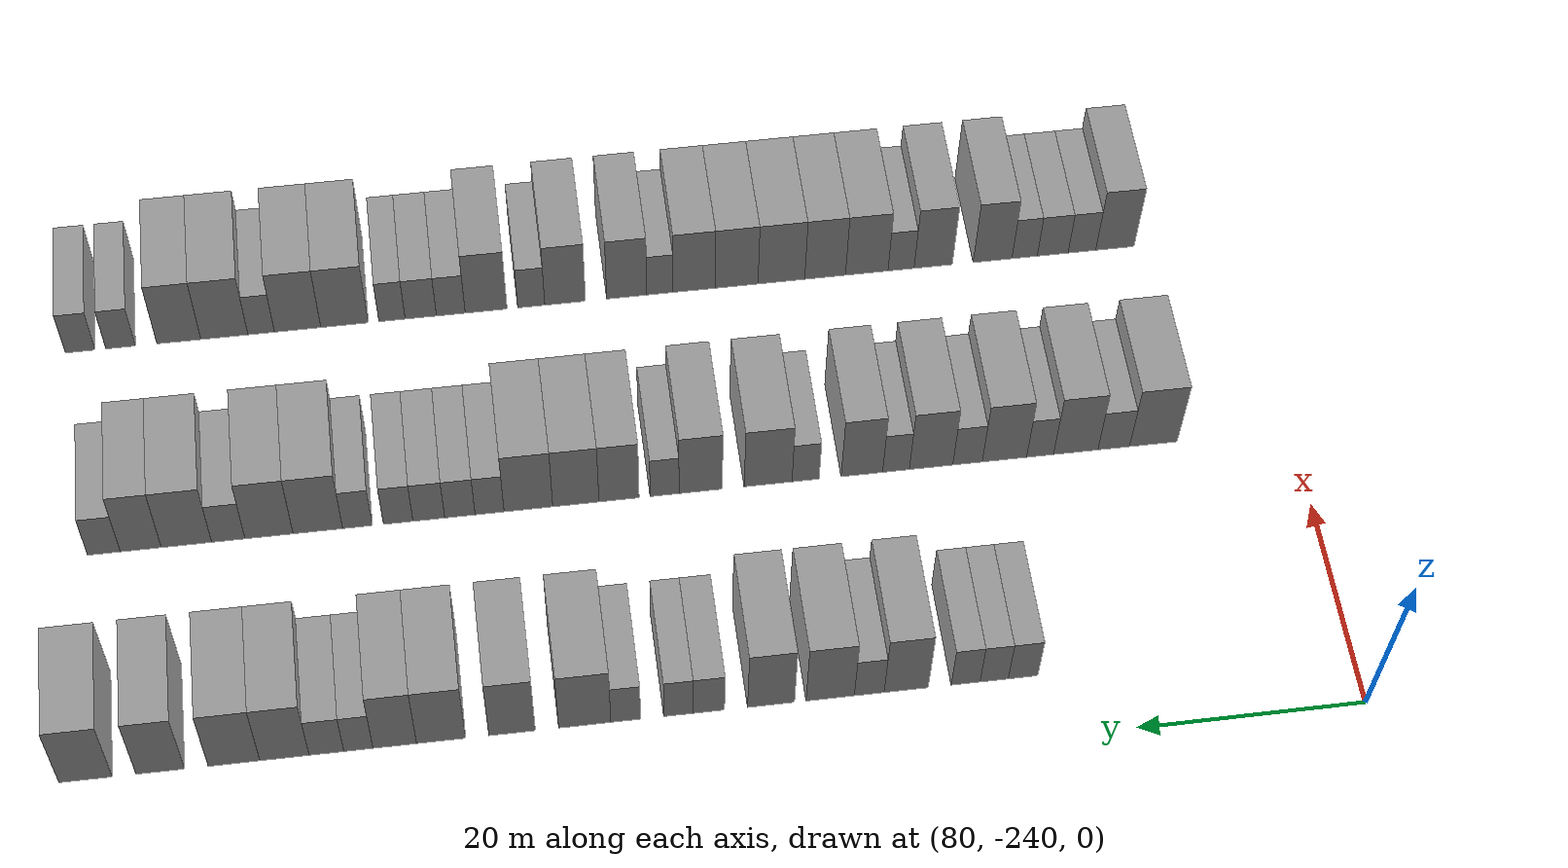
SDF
<sdf version="1.6">
 <world name="default">
  <model name="building_600">
   <static>1</static>
   <pose>91.0000 -211.1805 0 0.000000 0.000000 0.000000</pose>
   <link name="link">
    <pose>0 0 3.00 0 0 0</pose>
    <collision name="collision"><geometry><box><size>10.0000 2.5851 6.0000</size></box></geometry></collision>
    <visual name="visual">
     <cast_shadows>0</cast_shadows>
     <geometry><box><size>10.0000 2.5851 6.0000</size></box></geometry>
     <material>
      <script>
       <uri>model://grey_wall/materials/scripts</uri>
       <uri>model://grey_wall/materials/textures</uri>
       <name>vrc/grey_wall</name>
      </script>
     </material>
    </visual>
   </link>
  </model>
  <model name="building_601">
   <static>1</static>
   <pose>91.0000 -208.6540 0 0.000000 0.000000 0.000000</pose>
   <link name="link">
    <pose>0 0 3.00 0 0 0</pose>
    <collision name="collision"><geometry><box><size>10.0000 2.4679 6.0000</size></box></geometry></collision>
    <visual name="visual">
     <cast_shadows>0</cast_shadows>
     <geometry><box><size>10.0000 2.4679 6.0000</size></box></geometry>
     <material>
      <script>
       <uri>model://grey_wall/materials/scripts</uri>
       <uri>model://grey_wall/materials/textures</uri>
       <name>vrc/grey_wall</name>
      </script>
     </material>
    </visual>
   </link>
  </model>
  <model name="building_602">
   <static>1</static>
   <pose>91.0000 -206.1531 0 0.000000 0.000000 0.000000</pose>
   <link name="link">
    <pose>0 0 3.00 0 0 0</pose>
    <collision name="collision"><geometry><box><size>10.0000 2.5339 6.0000</size></box></geometry></collision>
    <visual name="visual">
     <cast_shadows>0</cast_shadows>
     <geometry><box><size>10.0000 2.5339 6.0000</size></box></geometry>
     <material>
      <script>
       <uri>model://grey_wall/materials/scripts</uri>
       <uri>model://grey_wall/materials/textures</uri>
       <name>vrc/grey_wall</name>
      </script>
     </material>
    </visual>
   </link>
  </model>
  <model name="building_603">
   <static>1</static>
   <pose>91.0000 -200.9616 0 0.000000 0.000000 0.000000</pose>
   <link name="link">
    <pose>0 0 4.50 0 0 0</pose>
    <collision name="collision"><geometry><box><size>10.0000 3.8490 9.0000</size></box></geometry></collision>
    <visual name="visual">
     <cast_shadows>0</cast_shadows>
     <geometry><box><size>10.0000 3.8490 9.0000</size></box></geometry>
     <material>
      <script>
       <uri>model://grey_wall/materials/scripts</uri>
       <uri>model://grey_wall/materials/textures</uri>
       <name>vrc/grey_wall</name>
      </script>
     </material>
    </visual>
   </link>
  </model>
  <model name="building_604">
   <static>1</static>
   <pose>91.0000 -197.7402 0 0.000000 0.000000 0.000000</pose>
   <link name="link">
    <pose>0 0 3.00 0 0 0</pose>
    <collision name="collision"><geometry><box><size>10.0000 2.5940 6.0000</size></box></geometry></collision>
    <visual name="visual">
     <cast_shadows>0</cast_shadows>
     <geometry><box><size>10.0000 2.5940 6.0000</size></box></geometry>
     <material>
      <script>
       <uri>model://grey_wall/materials/scripts</uri>
       <uri>model://grey_wall/materials/textures</uri>
       <name>vrc/grey_wall</name>
      </script>
     </material>
    </visual>
   </link>
  </model>
  <model name="building_605">
   <static>1</static>
   <pose>91.0000 -194.3454 0 0.000000 0.000000 0.000000</pose>
   <link name="link">
    <pose>0 0 4.50 0 0 0</pose>
    <collision name="collision"><geometry><box><size>10.0000 4.1956 9.0000</size></box></geometry></collision>
    <visual name="visual">
     <cast_shadows>0</cast_shadows>
     <geometry><box><size>10.0000 4.1956 9.0000</size></box></geometry>
     <material>
      <script>
       <uri>model://grey_wall/materials/scripts</uri>
       <uri>model://grey_wall/materials/textures</uri>
       <name>vrc/grey_wall</name>
      </script>
     </material>
    </visual>
   </link>
  </model>
  <model name="building_606">
   <static>1</static>
   <pose>91.0000 -189.2131 0 0.000000 0.000000 0.000000</pose>
   <link name="link">
    <pose>0 0 4.50 0 0 0</pose>
    <collision name="collision"><geometry><box><size>10.0000 4.0689 9.0000</size></box></geometry></collision>
    <visual name="visual">
     <cast_shadows>0</cast_shadows>
     <geometry><box><size>10.0000 4.0689 9.0000</size></box></geometry>
     <material>
      <script>
       <uri>model://grey_wall/materials/scripts</uri>
       <uri>model://grey_wall/materials/textures</uri>
       <name>vrc/grey_wall</name>
      </script>
     </material>
    </visual>
   </link>
  </model>
  <model name="building_607">
   <static>1</static>
   <pose>91.0000 -183.8229 0 0.000000 0.000000 0.000000</pose>
   <link name="link">
    <pose>0 0 3.00 0 0 0</pose>
    <collision name="collision"><geometry><box><size>10.0000 2.7115 6.0000</size></box></geometry></collision>
    <visual name="visual">
     <cast_shadows>0</cast_shadows>
     <geometry><box><size>10.0000 2.7115 6.0000</size></box></geometry>
     <material>
      <script>
       <uri>model://grey_wall/materials/scripts</uri>
       <uri>model://grey_wall/materials/textures</uri>
       <name>vrc/grey_wall</name>
      </script>
     </material>
    </visual>
   </link>
  </model>
  <model name="building_608">
   <static>1</static>
   <pose>91.0000 -181.2008 0 0.000000 0.000000 0.000000</pose>
   <link name="link">
    <pose>0 0 3.00 0 0 0</pose>
    <collision name="collision"><geometry><box><size>10.0000 2.5325 6.0000</size></box></geometry></collision>
    <visual name="visual">
     <cast_shadows>0</cast_shadows>
     <geometry><box><size>10.0000 2.5325 6.0000</size></box></geometry>
     <material>
      <script>
       <uri>model://grey_wall/materials/scripts</uri>
       <uri>model://grey_wall/materials/textures</uri>
       <name>vrc/grey_wall</name>
      </script>
     </material>
    </visual>
   </link>
  </model>
  <model name="building_609">
   <static>1</static>
   <pose>91.0000 -176.6529 0 0.000000 0.000000 0.000000</pose>
   <link name="link">
    <pose>0 0 3.00 0 0 0</pose>
    <collision name="collision"><geometry><box><size>10.0000 2.5633 6.0000</size></box></geometry></collision>
    <visual name="visual">
     <cast_shadows>0</cast_shadows>
     <geometry><box><size>10.0000 2.5633 6.0000</size></box></geometry>
     <material>
      <script>
       <uri>model://grey_wall/materials/scripts</uri>
       <uri>model://grey_wall/materials/textures</uri>
       <name>vrc/grey_wall</name>
      </script>
     </material>
    </visual>
   </link>
  </model>
  <model name="building_610">
   <static>1</static>
   <pose>91.0000 -173.1297 0 0.000000 0.000000 0.000000</pose>
   <link name="link">
    <pose>0 0 4.50 0 0 0</pose>
    <collision name="collision"><geometry><box><size>10.0000 4.4831 9.0000</size></box></geometry></collision>
    <visual name="visual">
     <cast_shadows>0</cast_shadows>
     <geometry><box><size>10.0000 4.4831 9.0000</size></box></geometry>
     <material>
      <script>
       <uri>model://grey_wall/materials/scripts</uri>
       <uri>model://grey_wall/materials/textures</uri>
       <name>vrc/grey_wall</name>
      </script>
     </material>
    </visual>
   </link>
  </model>
  <model name="building_611">
   <static>1</static>
   <pose>91.0000 -166.9022 0 0.000000 0.000000 0.000000</pose>
   <link name="link">
    <pose>0 0 4.50 0 0 0</pose>
    <collision name="collision"><geometry><box><size>10.0000 3.9720 9.0000</size></box></geometry></collision>
    <visual name="visual">
     <cast_shadows>0</cast_shadows>
     <geometry><box><size>10.0000 3.9720 9.0000</size></box></geometry>
     <material>
      <script>
       <uri>model://grey_wall/materials/scripts</uri>
       <uri>model://grey_wall/materials/textures</uri>
       <name>vrc/grey_wall</name>
      </script>
     </material>
    </visual>
   </link>
  </model>
  <model name="building_612">
   <static>1</static>
   <pose>91.0000 -160.8242 0 0.000000 0.000000 0.000000</pose>
   <link name="link">
    <pose>0 0 4.50 0 0 0</pose>
    <collision name="collision"><geometry><box><size>10.0000 4.1842 9.0000</size></box></geometry></collision>
    <visual name="visual">
     <cast_shadows>0</cast_shadows>
     <geometry><box><size>10.0000 4.1842 9.0000</size></box></geometry>
     <material>
      <script>
       <uri>model://grey_wall/materials/scripts</uri>
       <uri>model://grey_wall/materials/textures</uri>
       <name>vrc/grey_wall</name>
      </script>
     </material>
    </visual>
   </link>
  </model>
  <model name="building_613">
   <static>1</static>
   <pose>91.0000 -156.8763 0 0.000000 0.000000 0.000000</pose>
   <link name="link">
    <pose>0 0 4.50 0 0 0</pose>
    <collision name="collision"><geometry><box><size>10.0000 3.7114 9.0000</size></box></geometry></collision>
    <visual name="visual">
     <cast_shadows>0</cast_shadows>
     <geometry><box><size>10.0000 3.7114 9.0000</size></box></geometry>
     <material>
      <script>
       <uri>model://grey_wall/materials/scripts</uri>
       <uri>model://grey_wall/materials/textures</uri>
       <name>vrc/grey_wall</name>
      </script>
     </material>
    </visual>
   </link>
  </model>
  <model name="building_614">
   <static>1</static>
   <pose>91.0000 -153.7820 0 0.000000 0.000000 0.000000</pose>
   <link name="link">
    <pose>0 0 3.00 0 0 0</pose>
    <collision name="collision"><geometry><box><size>10.0000 2.4773 6.0000</size></box></geometry></collision>
    <visual name="visual">
     <cast_shadows>0</cast_shadows>
     <geometry><box><size>10.0000 2.4773 6.0000</size></box></geometry>
     <material>
      <script>
       <uri>model://grey_wall/materials/scripts</uri>
       <uri>model://grey_wall/materials/textures</uri>
       <name>vrc/grey_wall</name>
      </script>
     </material>
    </visual>
   </link>
  </model>
  <model name="building_615">
   <static>1</static>
   <pose>91.0000 -151.0632 0 0.000000 0.000000 0.000000</pose>
   <link name="link">
    <pose>0 0 3.00 0 0 0</pose>
    <collision name="collision"><geometry><box><size>10.0000 2.9602 6.0000</size></box></geometry></collision>
    <visual name="visual">
     <cast_shadows>0</cast_shadows>
     <geometry><box><size>10.0000 2.9602 6.0000</size></box></geometry>
     <material>
      <script>
       <uri>model://grey_wall/materials/scripts</uri>
       <uri>model://grey_wall/materials/textures</uri>
       <name>vrc/grey_wall</name>
      </script>
     </material>
    </visual>
   </link>
  </model>
  <model name="building_616">
   <static>1</static>
   <pose>91.0000 -147.4968 0 0.000000 0.000000 0.000000</pose>
   <link name="link">
    <pose>0 0 4.50 0 0 0</pose>
    <collision name="collision"><geometry><box><size>10.0000 4.1727 9.0000</size></box></geometry></collision>
    <visual name="visual">
     <cast_shadows>0</cast_shadows>
     <geometry><box><size>10.0000 4.1727 9.0000</size></box></geometry>
     <material>
      <script>
       <uri>model://grey_wall/materials/scripts</uri>
       <uri>model://grey_wall/materials/textures</uri>
       <name>vrc/grey_wall</name>
      </script>
     </material>
    </visual>
   </link>
  </model>
  <model name="building_617">
   <static>1</static>
   <pose>91.0000 -143.2257 0 0.000000 0.000000 0.000000</pose>
   <link name="link">
    <pose>0 0 4.50 0 0 0</pose>
    <collision name="collision"><geometry><box><size>10.0000 4.3695 9.0000</size></box></geometry></collision>
    <visual name="visual">
     <cast_shadows>0</cast_shadows>
     <geometry><box><size>10.0000 4.3695 9.0000</size></box></geometry>
     <material>
      <script>
       <uri>model://grey_wall/materials/scripts</uri>
       <uri>model://grey_wall/materials/textures</uri>
       <name>vrc/grey_wall</name>
      </script>
     </material>
    </visual>
   </link>
  </model>
  <model name="building_618">
   <static>1</static>
   <pose>91.0000 -136.9968 0 0.000000 0.000000 0.000000</pose>
   <link name="link">
    <pose>0 0 4.50 0 0 0</pose>
    <collision name="collision"><geometry><box><size>10.0000 4.0883 9.0000</size></box></geometry></collision>
    <visual name="visual">
     <cast_shadows>0</cast_shadows>
     <geometry><box><size>10.0000 4.0883 9.0000</size></box></geometry>
     <material>
      <script>
       <uri>model://grey_wall/materials/scripts</uri>
       <uri>model://grey_wall/materials/textures</uri>
       <name>vrc/grey_wall</name>
      </script>
     </material>
    </visual>
   </link>
  </model>
  <model name="building_619">
   <static>1</static>
   <pose>91.0000 -130.7131 0 0.000000 0.000000 0.000000</pose>
   <link name="link">
    <pose>0 0 4.50 0 0 0</pose>
    <collision name="collision"><geometry><box><size>10.0000 4.4792 9.0000</size></box></geometry></collision>
    <visual name="visual">
     <cast_shadows>0</cast_shadows>
     <geometry><box><size>10.0000 4.4792 9.0000</size></box></geometry>
     <material>
      <script>
       <uri>model://grey_wall/materials/scripts</uri>
       <uri>model://grey_wall/materials/textures</uri>
       <name>vrc/grey_wall</name>
      </script>
     </material>
    </visual>
   </link>
  </model>
  <model name="building_780">
   <static>1</static>
   <pose>113.0000 -227.3114 0 0.000000 0.000000 0.000000</pose>
   <link name="link">
    <pose>0 0 4.50 0 0 0</pose>
    <collision name="collision"><geometry><box><size>10.0000 4.4125 9.0000</size></box></geometry></collision>
    <visual name="visual">
     <cast_shadows>0</cast_shadows>
     <geometry><box><size>10.0000 4.4125 9.0000</size></box></geometry>
     <material>
      <script>
       <uri>model://grey_wall/materials/scripts</uri>
       <uri>model://grey_wall/materials/textures</uri>
       <name>vrc/grey_wall</name>
      </script>
     </material>
    </visual>
   </link>
  </model>
  <model name="building_781">
   <static>1</static>
   <pose>113.0000 -223.6478 0 0.000000 0.000000 0.000000</pose>
   <link name="link">
    <pose>0 0 3.00 0 0 0</pose>
    <collision name="collision"><geometry><box><size>10.0000 2.9148 6.0000</size></box></geometry></collision>
    <visual name="visual">
     <cast_shadows>0</cast_shadows>
     <geometry><box><size>10.0000 2.9148 6.0000</size></box></geometry>
     <material>
      <script>
       <uri>model://grey_wall/materials/scripts</uri>
       <uri>model://grey_wall/materials/textures</uri>
       <name>vrc/grey_wall</name>
      </script>
     </material>
    </visual>
   </link>
  </model>
  <model name="building_782">
   <static>1</static>
   <pose>113.0000 -220.1425 0 0.000000 0.000000 0.000000</pose>
   <link name="link">
    <pose>0 0 4.50 0 0 0</pose>
    <collision name="collision"><geometry><box><size>10.0000 4.0959 9.0000</size></box></geometry></collision>
    <visual name="visual">
     <cast_shadows>0</cast_shadows>
     <geometry><box><size>10.0000 4.0959 9.0000</size></box></geometry>
     <material>
      <script>
       <uri>model://grey_wall/materials/scripts</uri>
       <uri>model://grey_wall/materials/textures</uri>
       <name>vrc/grey_wall</name>
      </script>
     </material>
    </visual>
   </link>
  </model>
  <model name="building_783">
   <static>1</static>
   <pose>113.0000 -216.8578 0 0.000000 0.000000 0.000000</pose>
   <link name="link">
    <pose>0 0 3.00 0 0 0</pose>
    <collision name="collision"><geometry><box><size>10.0000 2.4735 6.0000</size></box></geometry></collision>
    <visual name="visual">
     <cast_shadows>0</cast_shadows>
     <geometry><box><size>10.0000 2.4735 6.0000</size></box></geometry>
     <material>
      <script>
       <uri>model://grey_wall/materials/scripts</uri>
       <uri>model://grey_wall/materials/textures</uri>
       <name>vrc/grey_wall</name>
      </script>
     </material>
    </visual>
   </link>
  </model>
  <model name="building_784">
   <static>1</static>
   <pose>113.0000 -213.5853 0 0.000000 0.000000 0.000000</pose>
   <link name="link">
    <pose>0 0 4.50 0 0 0</pose>
    <collision name="collision"><geometry><box><size>10.0000 4.0714 9.0000</size></box></geometry></collision>
    <visual name="visual">
     <cast_shadows>0</cast_shadows>
     <geometry><box><size>10.0000 4.0714 9.0000</size></box></geometry>
     <material>
      <script>
       <uri>model://grey_wall/materials/scripts</uri>
       <uri>model://grey_wall/materials/textures</uri>
       <name>vrc/grey_wall</name>
      </script>
     </material>
    </visual>
   </link>
  </model>
  <model name="building_785">
   <static>1</static>
   <pose>113.0000 -210.1982 0 0.000000 0.000000 0.000000</pose>
   <link name="link">
    <pose>0 0 3.00 0 0 0</pose>
    <collision name="collision"><geometry><box><size>10.0000 2.7028 6.0000</size></box></geometry></collision>
    <visual name="visual">
     <cast_shadows>0</cast_shadows>
     <geometry><box><size>10.0000 2.7028 6.0000</size></box></geometry>
     <material>
      <script>
       <uri>model://grey_wall/materials/scripts</uri>
       <uri>model://grey_wall/materials/textures</uri>
       <name>vrc/grey_wall</name>
      </script>
     </material>
    </visual>
   </link>
  </model>
  <model name="building_786">
   <static>1</static>
   <pose>113.0000 -206.8570 0 0.000000 0.000000 0.000000</pose>
   <link name="link">
    <pose>0 0 4.50 0 0 0</pose>
    <collision name="collision"><geometry><box><size>10.0000 3.9797 9.0000</size></box></geometry></collision>
    <visual name="visual">
     <cast_shadows>0</cast_shadows>
     <geometry><box><size>10.0000 3.9797 9.0000</size></box></geometry>
     <material>
      <script>
       <uri>model://grey_wall/materials/scripts</uri>
       <uri>model://grey_wall/materials/textures</uri>
       <name>vrc/grey_wall</name>
      </script>
     </material>
    </visual>
   </link>
  </model>
  <model name="building_787">
   <static>1</static>
   <pose>113.0000 -203.6434 0 0.000000 0.000000 0.000000</pose>
   <link name="link">
    <pose>0 0 3.00 0 0 0</pose>
    <collision name="collision"><geometry><box><size>10.0000 2.4476 6.0000</size></box></geometry></collision>
    <visual name="visual">
     <cast_shadows>0</cast_shadows>
     <geometry><box><size>10.0000 2.4476 6.0000</size></box></geometry>
     <material>
      <script>
       <uri>model://grey_wall/materials/scripts</uri>
       <uri>model://grey_wall/materials/textures</uri>
       <name>vrc/grey_wall</name>
      </script>
     </material>
    </visual>
   </link>
  </model>
  <model name="building_788">
   <static>1</static>
   <pose>113.0000 -200.5249 0 0.000000 0.000000 0.000000</pose>
   <link name="link">
    <pose>0 0 4.50 0 0 0</pose>
    <collision name="collision"><geometry><box><size>10.0000 3.7893 9.0000</size></box></geometry></collision>
    <visual name="visual">
     <cast_shadows>0</cast_shadows>
     <geometry><box><size>10.0000 3.7893 9.0000</size></box></geometry>
     <material>
      <script>
       <uri>model://grey_wall/materials/scripts</uri>
       <uri>model://grey_wall/materials/textures</uri>
       <name>vrc/grey_wall</name>
      </script>
     </material>
    </visual>
   </link>
  </model>
  <model name="building_789">
   <static>1</static>
   <pose>113.0000 -195.3949 0 0.000000 0.000000 0.000000</pose>
   <link name="link">
    <pose>0 0 3.00 0 0 0</pose>
    <collision name="collision"><geometry><box><size>10.0000 2.4707 6.0000</size></box></geometry></collision>
    <visual name="visual">
     <cast_shadows>0</cast_shadows>
     <geometry><box><size>10.0000 2.4707 6.0000</size></box></geometry>
     <material>
      <script>
       <uri>model://grey_wall/materials/scripts</uri>
       <uri>model://grey_wall/materials/textures</uri>
       <name>vrc/grey_wall</name>
      </script>
     </material>
    </visual>
   </link>
  </model>
  <model name="building_790">
   <static>1</static>
   <pose>113.0000 -191.9855 0 0.000000 0.000000 0.000000</pose>
   <link name="link">
    <pose>0 0 4.50 0 0 0</pose>
    <collision name="collision"><geometry><box><size>10.0000 4.3482 9.0000</size></box></geometry></collision>
    <visual name="visual">
     <cast_shadows>0</cast_shadows>
     <geometry><box><size>10.0000 4.3482 9.0000</size></box></geometry>
     <material>
      <script>
       <uri>model://grey_wall/materials/scripts</uri>
       <uri>model://grey_wall/materials/textures</uri>
       <name>vrc/grey_wall</name>
      </script>
     </material>
    </visual>
   </link>
  </model>
  <model name="building_791">
   <static>1</static>
   <pose>113.0000 -185.8587 0 0.000000 0.000000 0.000000</pose>
   <link name="link">
    <pose>0 0 4.50 0 0 0</pose>
    <collision name="collision"><geometry><box><size>10.0000 3.9053 9.0000</size></box></geometry></collision>
    <visual name="visual">
     <cast_shadows>0</cast_shadows>
     <geometry><box><size>10.0000 3.9053 9.0000</size></box></geometry>
     <material>
      <script>
       <uri>model://grey_wall/materials/scripts</uri>
       <uri>model://grey_wall/materials/textures</uri>
       <name>vrc/grey_wall</name>
      </script>
     </material>
    </visual>
   </link>
  </model>
  <model name="building_792">
   <static>1</static>
   <pose>113.0000 -182.6021 0 0.000000 0.000000 0.000000</pose>
   <link name="link">
    <pose>0 0 3.00 0 0 0</pose>
    <collision name="collision"><geometry><box><size>10.0000 2.6078 6.0000</size></box></geometry></collision>
    <visual name="visual">
     <cast_shadows>0</cast_shadows>
     <geometry><box><size>10.0000 2.6078 6.0000</size></box></geometry>
     <material>
      <script>
       <uri>model://grey_wall/materials/scripts</uri>
       <uri>model://grey_wall/materials/textures</uri>
       <name>vrc/grey_wall</name>
      </script>
     </material>
    </visual>
   </link>
  </model>
  <model name="building_793">
   <static>1</static>
   <pose>113.0000 -178.4873 0 0.000000 0.000000 0.000000</pose>
   <link name="link">
    <pose>0 0 4.50 0 0 0</pose>
    <collision name="collision"><geometry><box><size>10.0000 3.6219 9.0000</size></box></geometry></collision>
    <visual name="visual">
     <cast_shadows>0</cast_shadows>
     <geometry><box><size>10.0000 3.6219 9.0000</size></box></geometry>
     <material>
      <script>
       <uri>model://grey_wall/materials/scripts</uri>
       <uri>model://grey_wall/materials/textures</uri>
       <name>vrc/grey_wall</name>
      </script>
     </material>
    </visual>
   </link>
  </model>
  <model name="building_794">
   <static>1</static>
   <pose>113.0000 -174.5948 0 0.000000 0.000000 0.000000</pose>
   <link name="link">
    <pose>0 0 4.50 0 0 0</pose>
    <collision name="collision"><geometry><box><size>10.0000 4.1630 9.0000</size></box></geometry></collision>
    <visual name="visual">
     <cast_shadows>0</cast_shadows>
     <geometry><box><size>10.0000 4.1630 9.0000</size></box></geometry>
     <material>
      <script>
       <uri>model://grey_wall/materials/scripts</uri>
       <uri>model://grey_wall/materials/textures</uri>
       <name>vrc/grey_wall</name>
      </script>
     </material>
    </visual>
   </link>
  </model>
  <model name="building_795">
   <static>1</static>
   <pose>113.0000 -170.3277 0 0.000000 0.000000 0.000000</pose>
   <link name="link">
    <pose>0 0 4.50 0 0 0</pose>
    <collision name="collision"><geometry><box><size>10.0000 4.3713 9.0000</size></box></geometry></collision>
    <visual name="visual">
     <cast_shadows>0</cast_shadows>
     <geometry><box><size>10.0000 4.3713 9.0000</size></box></geometry>
     <material>
      <script>
       <uri>model://grey_wall/materials/scripts</uri>
       <uri>model://grey_wall/materials/textures</uri>
       <name>vrc/grey_wall</name>
      </script>
     </material>
    </visual>
   </link>
  </model>
  <model name="building_796">
   <static>1</static>
   <pose>113.0000 -166.8420 0 0.000000 0.000000 0.000000</pose>
   <link name="link">
    <pose>0 0 3.00 0 0 0</pose>
    <collision name="collision"><geometry><box><size>10.0000 2.6000 6.0000</size></box></geometry></collision>
    <visual name="visual">
     <cast_shadows>0</cast_shadows>
     <geometry><box><size>10.0000 2.6000 6.0000</size></box></geometry>
     <material>
      <script>
       <uri>model://grey_wall/materials/scripts</uri>
       <uri>model://grey_wall/materials/textures</uri>
       <name>vrc/grey_wall</name>
      </script>
     </material>
    </visual>
   </link>
  </model>
  <model name="building_797">
   <static>1</static>
   <pose>113.0000 -164.1796 0 0.000000 0.000000 0.000000</pose>
   <link name="link">
    <pose>0 0 3.00 0 0 0</pose>
    <collision name="collision"><geometry><box><size>10.0000 2.7249 6.0000</size></box></geometry></collision>
    <visual name="visual">
     <cast_shadows>0</cast_shadows>
     <geometry><box><size>10.0000 2.7249 6.0000</size></box></geometry>
     <material>
      <script>
       <uri>model://grey_wall/materials/scripts</uri>
       <uri>model://grey_wall/materials/textures</uri>
       <name>vrc/grey_wall</name>
      </script>
     </material>
    </visual>
   </link>
  </model>
  <model name="building_798">
   <static>1</static>
   <pose>113.0000 -161.3976 0 0.000000 0.000000 0.000000</pose>
   <link name="link">
    <pose>0 0 3.00 0 0 0</pose>
    <collision name="collision"><geometry><box><size>10.0000 2.8390 6.0000</size></box></geometry></collision>
    <visual name="visual">
     <cast_shadows>0</cast_shadows>
     <geometry><box><size>10.0000 2.8390 6.0000</size></box></geometry>
     <material>
      <script>
       <uri>model://grey_wall/materials/scripts</uri>
       <uri>model://grey_wall/materials/textures</uri>
       <name>vrc/grey_wall</name>
      </script>
     </material>
    </visual>
   </link>
  </model>
  <model name="building_799">
   <static>1</static>
   <pose>113.0000 -158.6594 0 0.000000 0.000000 0.000000</pose>
   <link name="link">
    <pose>0 0 3.00 0 0 0</pose>
    <collision name="collision"><geometry><box><size>10.0000 2.6374 6.0000</size></box></geometry></collision>
    <visual name="visual">
     <cast_shadows>0</cast_shadows>
     <geometry><box><size>10.0000 2.6374 6.0000</size></box></geometry>
     <material>
      <script>
       <uri>model://grey_wall/materials/scripts</uri>
       <uri>model://grey_wall/materials/textures</uri>
       <name>vrc/grey_wall</name>
      </script>
     </material>
    </visual>
   </link>
  </model>
  <model name="building_800">
   <static>1</static>
   <pose>113.0000 -155.0207 0 0.000000 0.000000 0.000000</pose>
   <link name="link">
    <pose>0 0 3.00 0 0 0</pose>
    <collision name="collision"><geometry><box><size>10.0000 2.6400 6.0000</size></box></geometry></collision>
    <visual name="visual">
     <cast_shadows>0</cast_shadows>
     <geometry><box><size>10.0000 2.6400 6.0000</size></box></geometry>
     <material>
      <script>
       <uri>model://grey_wall/materials/scripts</uri>
       <uri>model://grey_wall/materials/textures</uri>
       <name>vrc/grey_wall</name>
      </script>
     </material>
    </visual>
   </link>
  </model>
  <model name="building_801">
   <static>1</static>
   <pose>113.0000 -151.4915 0 0.000000 0.000000 0.000000</pose>
   <link name="link">
    <pose>0 0 4.50 0 0 0</pose>
    <collision name="collision"><geometry><box><size>10.0000 4.4185 9.0000</size></box></geometry></collision>
    <visual name="visual">
     <cast_shadows>0</cast_shadows>
     <geometry><box><size>10.0000 4.4185 9.0000</size></box></geometry>
     <material>
      <script>
       <uri>model://grey_wall/materials/scripts</uri>
       <uri>model://grey_wall/materials/textures</uri>
       <name>vrc/grey_wall</name>
      </script>
     </material>
    </visual>
   </link>
  </model>
  <model name="building_802">
   <static>1</static>
   <pose>113.0000 -147.1456 0 0.000000 0.000000 0.000000</pose>
   <link name="link">
    <pose>0 0 4.50 0 0 0</pose>
    <collision name="collision"><geometry><box><size>10.0000 4.2732 9.0000</size></box></geometry></collision>
    <visual name="visual">
     <cast_shadows>0</cast_shadows>
     <geometry><box><size>10.0000 4.2732 9.0000</size></box></geometry>
     <material>
      <script>
       <uri>model://grey_wall/materials/scripts</uri>
       <uri>model://grey_wall/materials/textures</uri>
       <name>vrc/grey_wall</name>
      </script>
     </material>
    </visual>
   </link>
  </model>
  <model name="building_803">
   <static>1</static>
   <pose>113.0000 -143.5298 0 0.000000 0.000000 0.000000</pose>
   <link name="link">
    <pose>0 0 3.00 0 0 0</pose>
    <collision name="collision"><geometry><box><size>10.0000 2.9585 6.0000</size></box></geometry></collision>
    <visual name="visual">
     <cast_shadows>0</cast_shadows>
     <geometry><box><size>10.0000 2.9585 6.0000</size></box></geometry>
     <material>
      <script>
       <uri>model://grey_wall/materials/scripts</uri>
       <uri>model://grey_wall/materials/textures</uri>
       <name>vrc/grey_wall</name>
      </script>
     </material>
    </visual>
   </link>
  </model>
  <model name="building_804">
   <static>1</static>
   <pose>113.0000 -139.8216 0 0.000000 0.000000 0.000000</pose>
   <link name="link">
    <pose>0 0 4.50 0 0 0</pose>
    <collision name="collision"><geometry><box><size>10.0000 4.4579 9.0000</size></box></geometry></collision>
    <visual name="visual">
     <cast_shadows>0</cast_shadows>
     <geometry><box><size>10.0000 4.4579 9.0000</size></box></geometry>
     <material>
      <script>
       <uri>model://grey_wall/materials/scripts</uri>
       <uri>model://grey_wall/materials/textures</uri>
       <name>vrc/grey_wall</name>
      </script>
     </material>
    </visual>
   </link>
  </model>
  <model name="building_805">
   <static>1</static>
   <pose>113.0000 -135.7829 0 0.000000 0.000000 0.000000</pose>
   <link name="link">
    <pose>0 0 4.50 0 0 0</pose>
    <collision name="collision"><geometry><box><size>10.0000 3.6194 9.0000</size></box></geometry></collision>
    <visual name="visual">
     <cast_shadows>0</cast_shadows>
     <geometry><box><size>10.0000 3.6194 9.0000</size></box></geometry>
     <material>
      <script>
       <uri>model://grey_wall/materials/scripts</uri>
       <uri>model://grey_wall/materials/textures</uri>
       <name>vrc/grey_wall</name>
      </script>
     </material>
    </visual>
   </link>
  </model>
  <model name="building_806">
   <static>1</static>
   <pose>113.0000 -132.5308 0 0.000000 0.000000 0.000000</pose>
   <link name="link">
    <pose>0 0 3.00 0 0 0</pose>
    <collision name="collision"><geometry><box><size>10.0000 2.8849 6.0000</size></box></geometry></collision>
    <visual name="visual">
     <cast_shadows>0</cast_shadows>
     <geometry><box><size>10.0000 2.8849 6.0000</size></box></geometry>
     <material>
      <script>
       <uri>model://grey_wall/materials/scripts</uri>
       <uri>model://grey_wall/materials/textures</uri>
       <name>vrc/grey_wall</name>
      </script>
     </material>
    </visual>
   </link>
  </model>
  <model name="building_969">
   <static>1</static>
   <pose>135.0000 -228.2576 0 0.000000 0.000000 0.000000</pose>
   <link name="link">
    <pose>0 0 4.50 0 0 0</pose>
    <collision name="collision"><geometry><box><size>10.0000 3.7115 9.0000</size></box></geometry></collision>
    <visual name="visual">
     <cast_shadows>0</cast_shadows>
     <geometry><box><size>10.0000 3.7115 9.0000</size></box></geometry>
     <material>
      <script>
       <uri>model://grey_wall/materials/scripts</uri>
       <uri>model://grey_wall/materials/textures</uri>
       <name>vrc/grey_wall</name>
      </script>
     </material>
    </visual>
   </link>
  </model>
  <model name="building_970">
   <static>1</static>
   <pose>135.0000 -225.0713 0 0.000000 0.000000 0.000000</pose>
   <link name="link">
    <pose>0 0 3.00 0 0 0</pose>
    <collision name="collision"><geometry><box><size>10.0000 2.6611 6.0000</size></box></geometry></collision>
    <visual name="visual">
     <cast_shadows>0</cast_shadows>
     <geometry><box><size>10.0000 2.6611 6.0000</size></box></geometry>
     <material>
      <script>
       <uri>model://grey_wall/materials/scripts</uri>
       <uri>model://grey_wall/materials/textures</uri>
       <name>vrc/grey_wall</name>
      </script>
     </material>
    </visual>
   </link>
  </model>
  <model name="building_971">
   <static>1</static>
   <pose>135.0000 -222.2592 0 0.000000 0.000000 0.000000</pose>
   <link name="link">
    <pose>0 0 3.00 0 0 0</pose>
    <collision name="collision"><geometry><box><size>10.0000 2.9632 6.0000</size></box></geometry></collision>
    <visual name="visual">
     <cast_shadows>0</cast_shadows>
     <geometry><box><size>10.0000 2.9632 6.0000</size></box></geometry>
     <material>
      <script>
       <uri>model://grey_wall/materials/scripts</uri>
       <uri>model://grey_wall/materials/textures</uri>
       <name>vrc/grey_wall</name>
      </script>
     </material>
    </visual>
   </link>
  </model>
  <model name="building_972">
   <static>1</static>
   <pose>135.0000 -219.5555 0 0.000000 0.000000 0.000000</pose>
   <link name="link">
    <pose>0 0 3.00 0 0 0</pose>
    <collision name="collision"><geometry><box><size>10.0000 2.4442 6.0000</size></box></geometry></collision>
    <visual name="visual">
     <cast_shadows>0</cast_shadows>
     <geometry><box><size>10.0000 2.4442 6.0000</size></box></geometry>
     <material>
      <script>
       <uri>model://grey_wall/materials/scripts</uri>
       <uri>model://grey_wall/materials/textures</uri>
       <name>vrc/grey_wall</name>
      </script>
     </material>
    </visual>
   </link>
  </model>
  <model name="building_973">
   <static>1</static>
   <pose>135.0000 -216.4706 0 0.000000 0.000000 0.000000</pose>
   <link name="link">
    <pose>0 0 4.50 0 0 0</pose>
    <collision name="collision"><geometry><box><size>10.0000 3.7255 9.0000</size></box></geometry></collision>
    <visual name="visual">
     <cast_shadows>0</cast_shadows>
     <geometry><box><size>10.0000 3.7255 9.0000</size></box></geometry>
     <material>
      <script>
       <uri>model://grey_wall/materials/scripts</uri>
       <uri>model://grey_wall/materials/textures</uri>
       <name>vrc/grey_wall</name>
      </script>
     </material>
    </visual>
   </link>
  </model>
  <model name="building_974">
   <static>1</static>
   <pose>135.0000 -210.7775 0 0.000000 0.000000 0.000000</pose>
   <link name="link">
    <pose>0 0 4.50 0 0 0</pose>
    <collision name="collision"><geometry><box><size>10.0000 3.6606 9.0000</size></box></geometry></collision>
    <visual name="visual">
     <cast_shadows>0</cast_shadows>
     <geometry><box><size>10.0000 3.6606 9.0000</size></box></geometry>
     <material>
      <script>
       <uri>model://grey_wall/materials/scripts</uri>
       <uri>model://grey_wall/materials/textures</uri>
       <name>vrc/grey_wall</name>
      </script>
     </material>
    </visual>
   </link>
  </model>
  <model name="building_975">
   <static>1</static>
   <pose>135.0000 -207.6965 0 0.000000 0.000000 0.000000</pose>
   <link name="link">
    <pose>0 0 3.00 0 0 0</pose>
    <collision name="collision"><geometry><box><size>10.0000 2.5013 6.0000</size></box></geometry></collision>
    <visual name="visual">
     <cast_shadows>0</cast_shadows>
     <geometry><box><size>10.0000 2.5013 6.0000</size></box></geometry>
     <material>
      <script>
       <uri>model://grey_wall/materials/scripts</uri>
       <uri>model://grey_wall/materials/textures</uri>
       <name>vrc/grey_wall</name>
      </script>
     </material>
    </visual>
   </link>
  </model>
  <model name="building_976">
   <static>1</static>
   <pose>135.0000 -204.4148 0 0.000000 0.000000 0.000000</pose>
   <link name="link">
    <pose>0 0 4.50 0 0 0</pose>
    <collision name="collision"><geometry><box><size>10.0000 4.0621 9.0000</size></box></geometry></collision>
    <visual name="visual">
     <cast_shadows>0</cast_shadows>
     <geometry><box><size>10.0000 4.0621 9.0000</size></box></geometry>
     <material>
      <script>
       <uri>model://grey_wall/materials/scripts</uri>
       <uri>model://grey_wall/materials/textures</uri>
       <name>vrc/grey_wall</name>
      </script>
     </material>
    </visual>
   </link>
  </model>
  <model name="building_977">
   <static>1</static>
   <pose>135.0000 -200.4440 0 0.000000 0.000000 0.000000</pose>
   <link name="link">
    <pose>0 0 4.50 0 0 0</pose>
    <collision name="collision"><geometry><box><size>10.0000 3.8795 9.0000</size></box></geometry></collision>
    <visual name="visual">
     <cast_shadows>0</cast_shadows>
     <geometry><box><size>10.0000 3.8795 9.0000</size></box></geometry>
     <material>
      <script>
       <uri>model://grey_wall/materials/scripts</uri>
       <uri>model://grey_wall/materials/textures</uri>
       <name>vrc/grey_wall</name>
      </script>
     </material>
    </visual>
   </link>
  </model>
  <model name="building_978">
   <static>1</static>
   <pose>135.0000 -196.2809 0 0.000000 0.000000 0.000000</pose>
   <link name="link">
    <pose>0 0 4.50 0 0 0</pose>
    <collision name="collision"><geometry><box><size>10.0000 4.4467 9.0000</size></box></geometry></collision>
    <visual name="visual">
     <cast_shadows>0</cast_shadows>
     <geometry><box><size>10.0000 4.4467 9.0000</size></box></geometry>
     <material>
      <script>
       <uri>model://grey_wall/materials/scripts</uri>
       <uri>model://grey_wall/materials/textures</uri>
       <name>vrc/grey_wall</name>
      </script>
     </material>
    </visual>
   </link>
  </model>
  <model name="building_979">
   <static>1</static>
   <pose>135.0000 -192.0155 0 0.000000 0.000000 0.000000</pose>
   <link name="link">
    <pose>0 0 4.50 0 0 0</pose>
    <collision name="collision"><geometry><box><size>10.0000 4.0840 9.0000</size></box></geometry></collision>
    <visual name="visual">
     <cast_shadows>0</cast_shadows>
     <geometry><box><size>10.0000 4.0840 9.0000</size></box></geometry>
     <material>
      <script>
       <uri>model://grey_wall/materials/scripts</uri>
       <uri>model://grey_wall/materials/textures</uri>
       <name>vrc/grey_wall</name>
      </script>
     </material>
    </visual>
   </link>
  </model>
  <model name="building_980">
   <static>1</static>
   <pose>135.0000 -187.9863 0 0.000000 0.000000 0.000000</pose>
   <link name="link">
    <pose>0 0 4.50 0 0 0</pose>
    <collision name="collision"><geometry><box><size>10.0000 3.9743 9.0000</size></box></geometry></collision>
    <visual name="visual">
     <cast_shadows>0</cast_shadows>
     <geometry><box><size>10.0000 3.9743 9.0000</size></box></geometry>
     <material>
      <script>
       <uri>model://grey_wall/materials/scripts</uri>
       <uri>model://grey_wall/materials/textures</uri>
       <name>vrc/grey_wall</name>
      </script>
     </material>
    </visual>
   </link>
  </model>
  <model name="building_981">
   <static>1</static>
   <pose>135.0000 -184.7576 0 0.000000 0.000000 0.000000</pose>
   <link name="link">
    <pose>0 0 3.00 0 0 0</pose>
    <collision name="collision"><geometry><box><size>10.0000 2.4832 6.0000</size></box></geometry></collision>
    <visual name="visual">
     <cast_shadows>0</cast_shadows>
     <geometry><box><size>10.0000 2.4832 6.0000</size></box></geometry>
     <material>
      <script>
       <uri>model://grey_wall/materials/scripts</uri>
       <uri>model://grey_wall/materials/textures</uri>
       <name>vrc/grey_wall</name>
      </script>
     </material>
    </visual>
   </link>
  </model>
  <model name="building_982">
   <static>1</static>
   <pose>135.0000 -181.6236 0 0.000000 0.000000 0.000000</pose>
   <link name="link">
    <pose>0 0 4.50 0 0 0</pose>
    <collision name="collision"><geometry><box><size>10.0000 3.7849 9.0000</size></box></geometry></collision>
    <visual name="visual">
     <cast_shadows>0</cast_shadows>
     <geometry><box><size>10.0000 3.7849 9.0000</size></box></geometry>
     <material>
      <script>
       <uri>model://grey_wall/materials/scripts</uri>
       <uri>model://grey_wall/materials/textures</uri>
       <name>vrc/grey_wall</name>
      </script>
     </material>
    </visual>
   </link>
  </model>
  <model name="building_983">
   <static>1</static>
   <pose>135.0000 -175.8124 0 0.000000 0.000000 0.000000</pose>
   <link name="link">
    <pose>0 0 4.50 0 0 0</pose>
    <collision name="collision"><geometry><box><size>10.0000 3.8374 9.0000</size></box></geometry></collision>
    <visual name="visual">
     <cast_shadows>0</cast_shadows>
     <geometry><box><size>10.0000 3.8374 9.0000</size></box></geometry>
     <material>
      <script>
       <uri>model://grey_wall/materials/scripts</uri>
       <uri>model://grey_wall/materials/textures</uri>
       <name>vrc/grey_wall</name>
      </script>
     </material>
    </visual>
   </link>
  </model>
  <model name="building_984">
   <static>1</static>
   <pose>135.0000 -172.6216 0 0.000000 0.000000 0.000000</pose>
   <link name="link">
    <pose>0 0 3.00 0 0 0</pose>
    <collision name="collision"><geometry><box><size>10.0000 2.5443 6.0000</size></box></geometry></collision>
    <visual name="visual">
     <cast_shadows>0</cast_shadows>
     <geometry><box><size>10.0000 2.5443 6.0000</size></box></geometry>
     <material>
      <script>
       <uri>model://grey_wall/materials/scripts</uri>
       <uri>model://grey_wall/materials/textures</uri>
       <name>vrc/grey_wall</name>
      </script>
     </material>
    </visual>
   </link>
  </model>
  <model name="building_985">
   <static>1</static>
   <pose>135.0000 -168.3870 0 0.000000 0.000000 0.000000</pose>
   <link name="link">
    <pose>0 0 4.50 0 0 0</pose>
    <collision name="collision"><geometry><box><size>10.0000 3.9248 9.0000</size></box></geometry></collision>
    <visual name="visual">
     <cast_shadows>0</cast_shadows>
     <geometry><box><size>10.0000 3.9248 9.0000</size></box></geometry>
     <material>
      <script>
       <uri>model://grey_wall/materials/scripts</uri>
       <uri>model://grey_wall/materials/textures</uri>
       <name>vrc/grey_wall</name>
      </script>
     </material>
    </visual>
   </link>
  </model>
  <model name="building_986">
   <static>1</static>
   <pose>135.0000 -165.0744 0 0.000000 0.000000 0.000000</pose>
   <link name="link">
    <pose>0 0 3.00 0 0 0</pose>
    <collision name="collision"><geometry><box><size>10.0000 2.7005 6.0000</size></box></geometry></collision>
    <visual name="visual">
     <cast_shadows>0</cast_shadows>
     <geometry><box><size>10.0000 2.7005 6.0000</size></box></geometry>
     <material>
      <script>
       <uri>model://grey_wall/materials/scripts</uri>
       <uri>model://grey_wall/materials/textures</uri>
       <name>vrc/grey_wall</name>
      </script>
     </material>
    </visual>
   </link>
  </model>
  <model name="building_987">
   <static>1</static>
   <pose>135.0000 -162.2602 0 0.000000 0.000000 0.000000</pose>
   <link name="link">
    <pose>0 0 3.00 0 0 0</pose>
    <collision name="collision"><geometry><box><size>10.0000 2.9278 6.0000</size></box></geometry></collision>
    <visual name="visual">
     <cast_shadows>0</cast_shadows>
     <geometry><box><size>10.0000 2.9278 6.0000</size></box></geometry>
     <material>
      <script>
       <uri>model://grey_wall/materials/scripts</uri>
       <uri>model://grey_wall/materials/textures</uri>
       <name>vrc/grey_wall</name>
      </script>
     </material>
    </visual>
   </link>
  </model>
  <model name="building_988">
   <static>1</static>
   <pose>135.0000 -159.5730 0 0.000000 0.000000 0.000000</pose>
   <link name="link">
    <pose>0 0 3.00 0 0 0</pose>
    <collision name="collision"><geometry><box><size>10.0000 2.4465 6.0000</size></box></geometry></collision>
    <visual name="visual">
     <cast_shadows>0</cast_shadows>
     <geometry><box><size>10.0000 2.4465 6.0000</size></box></geometry>
     <material>
      <script>
       <uri>model://grey_wall/materials/scripts</uri>
       <uri>model://grey_wall/materials/textures</uri>
       <name>vrc/grey_wall</name>
      </script>
     </material>
    </visual>
   </link>
  </model>
  <model name="building_989">
   <static>1</static>
   <pose>135.0000 -155.1337 0 0.000000 0.000000 0.000000</pose>
   <link name="link">
    <pose>0 0 4.50 0 0 0</pose>
    <collision name="collision"><geometry><box><size>10.0000 4.4320 9.0000</size></box></geometry></collision>
    <visual name="visual">
     <cast_shadows>0</cast_shadows>
     <geometry><box><size>10.0000 4.4320 9.0000</size></box></geometry>
     <material>
      <script>
       <uri>model://grey_wall/materials/scripts</uri>
       <uri>model://grey_wall/materials/textures</uri>
       <name>vrc/grey_wall</name>
      </script>
     </material>
    </visual>
   </link>
  </model>
  <model name="building_990">
   <static>1</static>
   <pose>135.0000 -150.7610 0 0.000000 0.000000 0.000000</pose>
   <link name="link">
    <pose>0 0 4.50 0 0 0</pose>
    <collision name="collision"><geometry><box><size>10.0000 4.3135 9.0000</size></box></geometry></collision>
    <visual name="visual">
     <cast_shadows>0</cast_shadows>
     <geometry><box><size>10.0000 4.3135 9.0000</size></box></geometry>
     <material>
      <script>
       <uri>model://grey_wall/materials/scripts</uri>
       <uri>model://grey_wall/materials/textures</uri>
       <name>vrc/grey_wall</name>
      </script>
     </material>
    </visual>
   </link>
  </model>
  <model name="building_991">
   <static>1</static>
   <pose>135.0000 -147.3713 0 0.000000 0.000000 0.000000</pose>
   <link name="link">
    <pose>0 0 3.00 0 0 0</pose>
    <collision name="collision"><geometry><box><size>10.0000 2.4658 6.0000</size></box></geometry></collision>
    <visual name="visual">
     <cast_shadows>0</cast_shadows>
     <geometry><box><size>10.0000 2.4658 6.0000</size></box></geometry>
     <material>
      <script>
       <uri>model://grey_wall/materials/scripts</uri>
       <uri>model://grey_wall/materials/textures</uri>
       <name>vrc/grey_wall</name>
      </script>
     </material>
    </visual>
   </link>
  </model>
  <model name="building_992">
   <static>1</static>
   <pose>135.0000 -143.9566 0 0.000000 0.000000 0.000000</pose>
   <link name="link">
    <pose>0 0 4.50 0 0 0</pose>
    <collision name="collision"><geometry><box><size>10.0000 4.3635 9.0000</size></box></geometry></collision>
    <visual name="visual">
     <cast_shadows>0</cast_shadows>
     <geometry><box><size>10.0000 4.3635 9.0000</size></box></geometry>
     <material>
      <script>
       <uri>model://grey_wall/materials/scripts</uri>
       <uri>model://grey_wall/materials/textures</uri>
       <name>vrc/grey_wall</name>
      </script>
     </material>
    </visual>
   </link>
  </model>
  <model name="building_993">
   <static>1</static>
   <pose>135.0000 -139.7421 0 0.000000 0.000000 0.000000</pose>
   <link name="link">
    <pose>0 0 4.50 0 0 0</pose>
    <collision name="collision"><geometry><box><size>10.0000 4.0656 9.0000</size></box></geometry></collision>
    <visual name="visual">
     <cast_shadows>0</cast_shadows>
     <geometry><box><size>10.0000 4.0656 9.0000</size></box></geometry>
     <material>
      <script>
       <uri>model://grey_wall/materials/scripts</uri>
       <uri>model://grey_wall/materials/textures</uri>
       <name>vrc/grey_wall</name>
      </script>
     </material>
    </visual>
   </link>
  </model>
  <model name="building_994">
   <static>1</static>
   <pose>135.0000 -134.3513 0 0.000000 0.000000 0.000000</pose>
   <link name="link">
    <pose>0 0 3.00 0 0 0</pose>
    <collision name="collision"><geometry><box><size>10.0000 2.7161 6.0000</size></box></geometry></collision>
    <visual name="visual">
     <cast_shadows>0</cast_shadows>
     <geometry><box><size>10.0000 2.7161 6.0000</size></box></geometry>
     <material>
      <script>
       <uri>model://grey_wall/materials/scripts</uri>
       <uri>model://grey_wall/materials/textures</uri>
       <name>vrc/grey_wall</name>
      </script>
     </material>
    </visual>
   </link>
  </model>
  <model name="building_995">
   <static>1</static>
   <pose>135.0000 -130.6228 0 0.000000 0.000000 0.000000</pose>
   <link name="link">
    <pose>0 0 3.00 0 0 0</pose>
    <collision name="collision"><geometry><box><size>10.0000 2.7408 6.0000</size></box></geometry></collision>
    <visual name="visual">
     <cast_shadows>0</cast_shadows>
     <geometry><box><size>10.0000 2.7408 6.0000</size></box></geometry>
     <material>
      <script>
       <uri>model://grey_wall/materials/scripts</uri>
       <uri>model://grey_wall/materials/textures</uri>
       <name>vrc/grey_wall</name>
      </script>
     </material>
    </visual>
   </link>
  </model>
 </world>
</sdf>
